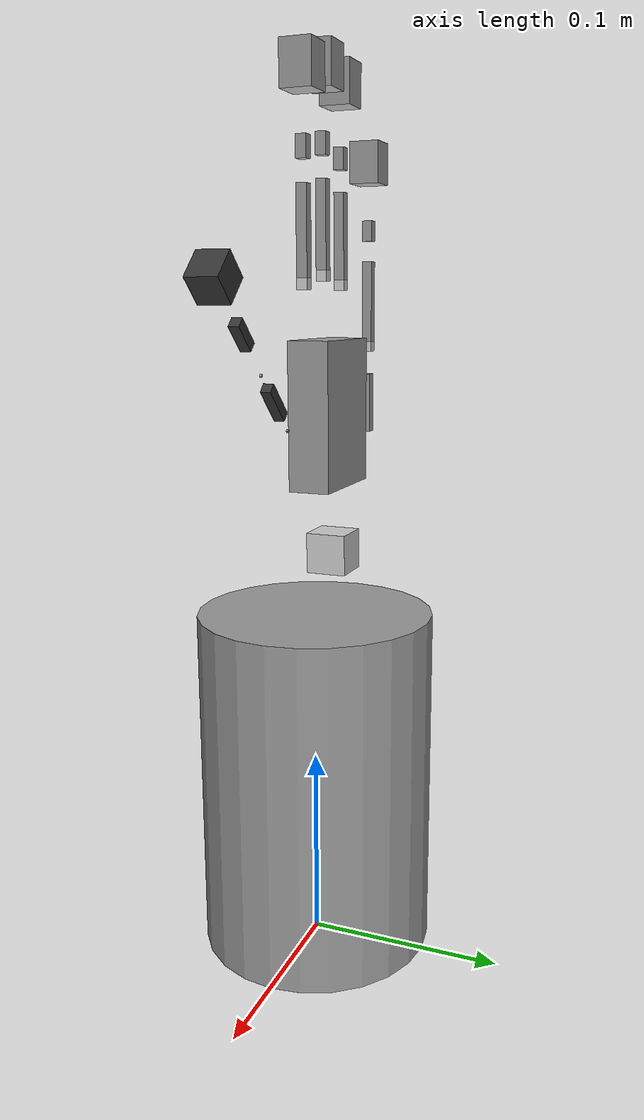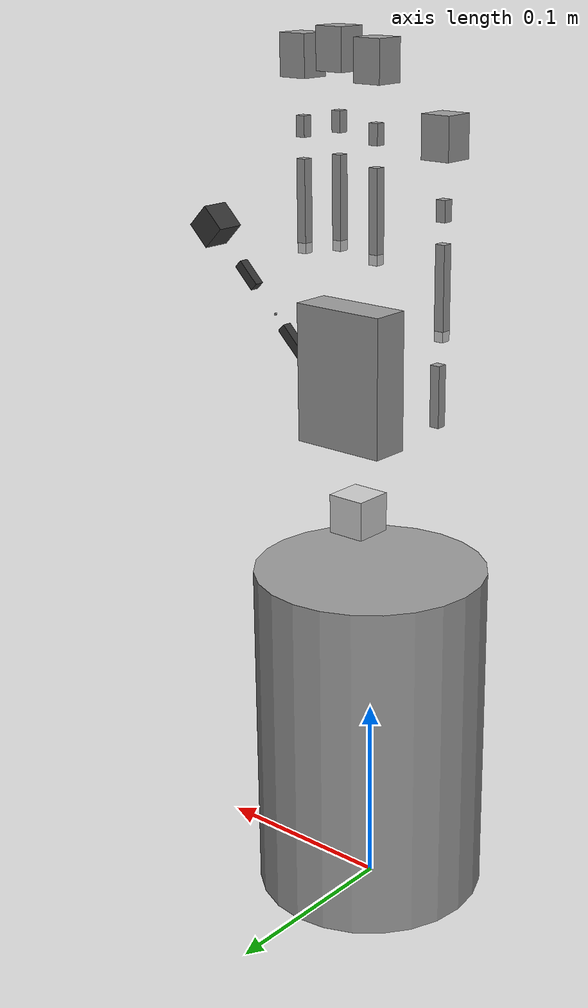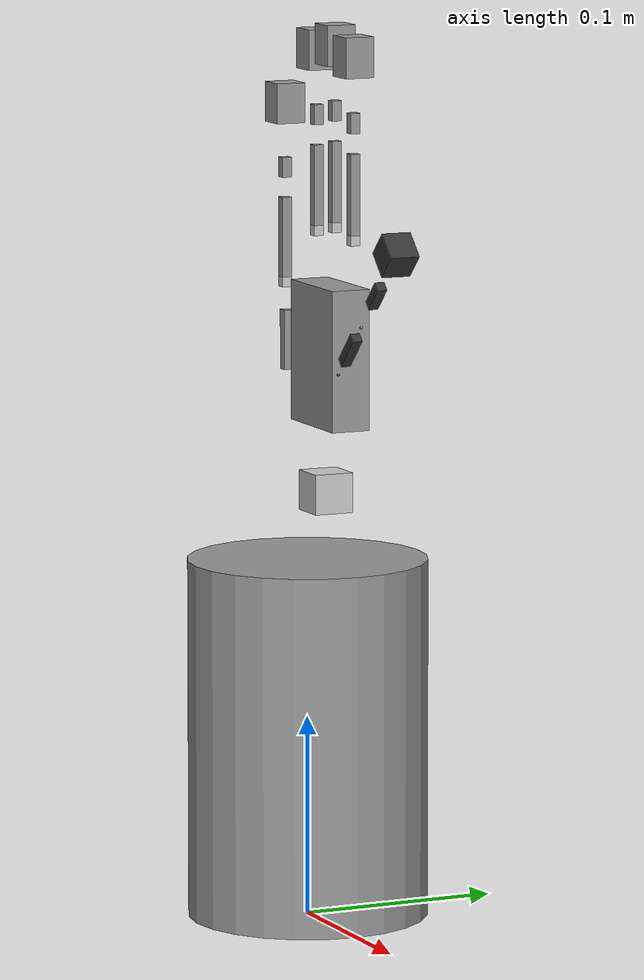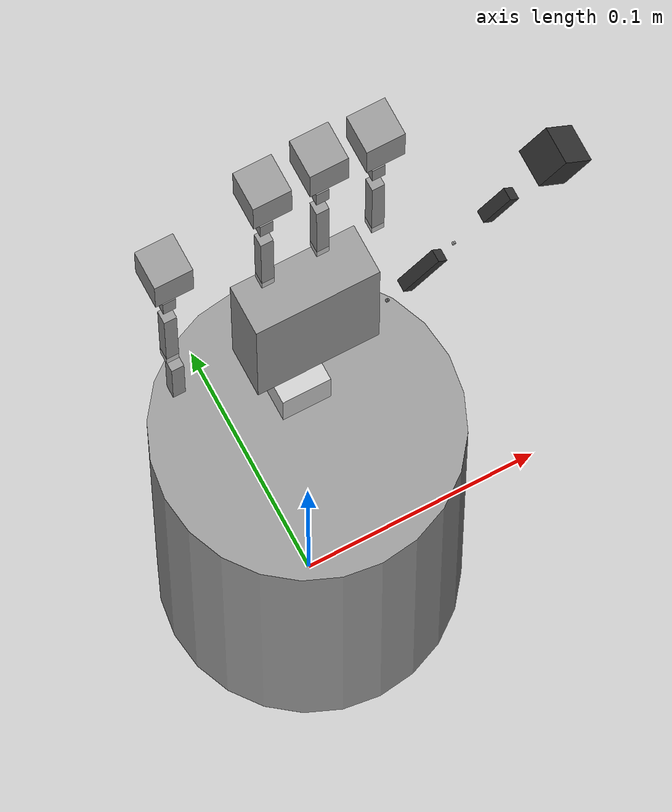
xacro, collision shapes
<robot xmlns:sensor="http://playerstage.sourceforge.net/gazebo/xmlschema/#sensor"
       xmlns:controller="http://playerstage.sourceforge.net/gazebo/xmlschema/#controller"
       xmlns:interface="http://playerstage.sourceforge.net/gazebo/xmlschema/#interface"
       xmlns:xacro="http://www.ros.org/wiki/xacro"
       name="shadowhand_motor">

  <include filename="$(find sr_hand)/model/materials.urdf.xacro" />
  <include filename="$(find sr_hand)/model/hand_urdf/full_hand_motor.urdf.xacro" />

  <xacro:shadowhand_motor>
  </xacro:shadowhand_motor>

</robot>

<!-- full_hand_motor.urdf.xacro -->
<robot xmlns:sensor="http://playerstage.sourceforge.net/gazebo/xmlschema/#sensor"
       xmlns:controller="http://playerstage.sourceforge.net/gazebo/xmlschema/#controller"
       xmlns:interface="http://playerstage.sourceforge.net/gazebo/xmlschema/#interface"
       xmlns:xacro="http://www.ros.org/wiki/xacro">

  <include filename="$(find sr_hand)/model/hand_urdf/forearm/forearm_motor.urdf.xacro" />
  <include filename="$(find sr_hand)/model/hand_urdf/wrist/wrist.urdf.xacro" />
  <include filename="$(find sr_hand)/model/hand_urdf/palm/palm.urdf.xacro" />
  <include filename="$(find sr_hand)/model/hand_urdf/finger/classic_finger.urdf.xacro" />
  <include filename="$(find sr_hand)/model/hand_urdf/finger/little_finger.urdf.xacro" />
  <include filename="$(find sr_hand)/model/hand_urdf/thumb/thumb.urdf.xacro" />

  <xacro:macro name="shadowhand_motor">

    <xacro:forearm_motor>
    </xacro:forearm_motor>

    <xacro:wrist parent="forearm_motor">
      <origin xyz="0 0.010 0.213" rpy="0 0 0" />
    </xacro:wrist>

    <xacro:palm parent="wrist">
    </xacro:palm>

    <xacro:finger link_prefix="ff" joint_prefix="FF" parent="palm">
      <origin xyz="0.033 0 0.095" rpy="0 0 0" />
      <axis xyz="0 -1 0" />
    </xacro:finger>

    <xacro:finger link_prefix="mf" joint_prefix="MF" parent="palm">
      <origin xyz="0.011 0 0.099" rpy="0 0 0" />
      <axis xyz="0 -1 0" />
    </xacro:finger>

    <xacro:finger link_prefix="rf" joint_prefix="RF" parent="palm">
      <origin xyz="-0.011 0 0.095" rpy="0 0 0" />
      <axis xyz="0 1 0" />
    </xacro:finger>

    <xacro:little_finger link_prefix="lf" joint_prefix="LF" parent="palm">
    </xacro:little_finger>

    <xacro:thumb parent="palm">
    </xacro:thumb>

  </xacro:macro>

</robot>

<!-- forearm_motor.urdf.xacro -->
<robot xmlns:xacro="http://ros.org/wiki/xacro">

  <property name="M_PI" value="3.1415926535897931" />

  <xacro:macro name="forearm_motor">

    <link name="forearm_motor">
      <inertial>
	<origin xyz="0 0 0" />
	<mass value="3.0" />
	<inertia  ixx="1.0" ixy="0.0"  ixz="0.0"  iyy="0.0"  iyz="0.0"  izz="0.0" />
      </inertial>
      <visual>
	<origin xyz="0 0 0" rpy="0 0 0" />
	<geometry name="shadow_forearm_geom">
	  <mesh filename="package://sr_hand/model/meshes/forearm.mesh" scale="0.001 0.001 0.001"/>
	</geometry>
	<material name="Grey" />
      </visual>
      <collision>
	<origin xyz="0 0 0.09" rpy="0 0 0" />
	<geometry name="shadow_forearm_collision">
	  <cylinder radius="0.06" length="0.180"/>
	</geometry>
      </collision>
    </link>
    <gazebo reference="forearm_motor">
      <material>Gazebo/Grey</material>
      <selfCollide>true</selfCollide>
    </gazebo>

  </xacro:macro>

</robot>

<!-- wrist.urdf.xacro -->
<robot xmlns:xacro="http://ros.org/wiki/xacro">

  <xacro:macro name="wrist" params="parent *origin">

    <link name="wrist" >
      <inertial>
	<insert_block name="origin" />
	<mass value="0.3" />
	<inertia  ixx="1.0" ixy="0.0"  ixz="0.0"  iyy="100.0"  iyz="0.0"
	izz="1.0" />
      </inertial>
      <visual>
	<origin xyz="0 0 0" rpy="${M_PI/2} 0 0" />
	<geometry name="wrist_visual">
	  <mesh filename="package://sr_hand/model/meshes/wrist.mesh" scale="0.001 0.001 0.001" />
	</geometry>
	<material name="LightGrey" />
      </visual>
      <collision>
	<origin xyz="0 0 0" rpy="0 0 0" />
	<geometry name="wrist_collision_geom">
	  <box size="0.02 0.02 0.02" />
	</geometry>
      </collision>
    </link>
    <gazebo reference="wrist">
      <material>PR2/Grey2</material>
      <selfCollide>true</selfCollide>
    </gazebo>

    <joint name="WRJ2" type="revolute">
      <parent link="${parent}"/>
      <child link="wrist"/>
      <insert_block name="origin" />
      <axis xyz="0 1 0" />
      <limit lower="-0.52359877559829882" upper="0.17453292519943295"
      effort="10" velocity="1.0"/>
    </joint>

  </xacro:macro>

</robot>

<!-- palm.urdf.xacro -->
<robot xmlns:xacro="http://ros.org/wiki/xacro"
        xmlns:sensor="http://playerstage.sourceforge.net/gazebo/xmlschema/#sensor"
       xmlns:controller="http://playerstage.sourceforge.net/gazebo/xmlschema/#controller"
       xmlns:joint="http://playerstage.sourceforge.net/gazebo/xmlschema/#slider"
       xmlns:interface="http://playerstage.sourceforge.net/gazebo/xmlschema/#interface"
       xmlns:body="http://playerstage.sourceforge.net/gazebo/xmlschema/#body"
       xmlns:geom="http://playerstage.sourceforge.net/gazebo/xmlschema/#geom">

  <include filename="$(find sr_hand)/model/hand_urdf/palm/palm.transmission.xacro" />

  <xacro:macro name="palm" params="parent">

    <link name="palm" >
      <inertial>
	<origin xyz="0 0.010 0.247" rpy="0 0 0" />
	<mass value="0.3" />
	<inertia  ixx="1.0" ixy="0.0"  ixz="0.0"  iyy="0.0"  iyz="0.0"
	izz="0.0" />
      </inertial>
      <visual>
	<origin xyz="0 0 0" rpy="0 -${M_PI/2} 0" />
	<geometry name="palm_visual">
	  <mesh filename="package://sr_hand/model/meshes/palm.mesh" scale="0.001 0.001 0.001" />
	</geometry>
	<material name="Grey"/>
      </visual>
      <collision>
	<origin xyz="0.005 0 0.035" rpy="0 0 0" />
	<geometry name="palm_collision_geom">
	  <box size="0.05 0.02 0.07" />
	</geometry>
      </collision>
    </link>
    <gazebo reference="palm">
      <sensor:contact name="palm_contact_sensor">
       <geom>palm_geom</geom>
       <updateRate>100.0</updateRate>
       <controller:gazebo_ros_bumper name="palm_gazebo_ros_bumper_controller" plugin="libgazebo_ros_bumper.so">
          <alwaysOn>true</alwaysOn>
          <updateRate>100.0</updateRate>
          <frameName>palm</frameName>
          <bumperTopicName>palm_bumper</bumperTopicName>
          <interface:bumper name="palm_gazebo_ros_bumper_iface" />
       </controller:gazebo_ros_bumper>
      </sensor:contact>
      <material>Gazebo/Grey</material>
    </gazebo>

    <joint name="WRJ1" type="revolute">
      <parent link="${parent}"/>
      <child link="palm"/>
      <origin xyz="0 0 0.034" rpy="0 0 0" />
      <axis xyz="1 0 0" />
      <limit lower="-0.78539816339744828" upper="0.6108652381980153"
      effort="10" velocity="1.0"/>
      <dynamics damping="50.5"/>
    </joint>

    <xacro:shadowhand_palm_transmission />

  </xacro:macro>

</robot>

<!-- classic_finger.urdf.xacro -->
<robot xmlns:xacro="http://www.ros.org/wiki/xacro">

  <include filename="$(find sr_hand)/model/hand_urdf/finger/knuckle/knuckle.urdf.xacro" />
  <include filename="$(find sr_hand)/model/hand_urdf/finger/proximal/proximal.urdf.xacro" />
  <include filename="$(find sr_hand)/model/hand_urdf/finger/middle/middle.urdf.xacro" />
  <include filename="$(find sr_hand)/model/hand_urdf/finger/distal/distal.urdf.xacro" />

  <xacro:macro name="finger" params="link_prefix joint_prefix parent *origin">

    <xacro:knuckle link_prefix="${link_prefix}" joint_prefix="${joint_prefix}" parent="${parent}" >
      <insert_block name="origin" />
    </xacro:knuckle>

    <xacro:proximal link_prefix="${link_prefix}" joint_prefix="${joint_prefix}" parent="${link_prefix}knuckle" >
    </xacro:proximal>

    <xacro:middle link_prefix="${link_prefix}" joint_prefix="${joint_prefix}" parent="${link_prefix}proximal" >
    </xacro:middle>

    <xacro:distal link_prefix="${link_prefix}" joint_prefix="${joint_prefix}" parent="${link_prefix}middle" >
    </xacro:distal>

  </xacro:macro>

</robot>

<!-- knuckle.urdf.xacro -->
<robot xmlns:xacro="http://ros.org/wiki/xacro">

  <xacro:macro name="knuckle" params="link_prefix joint_prefix parent *origin">

    <link name="${link_prefix}knuckle">
      <inertial>
	<insert_block name="origin" />
	<mass value="0.008" />
	<inertia  ixx="1.0" ixy="0.0"  ixz="0.0"  iyy="100.0"  iyz="0.0"
	izz="1.0" />
      </inertial>
      <visual>
	<origin xyz="0 0 0.0005" rpy="${M_PI} -${M_PI/2} -${M_PI/2}" />
	<geometry name="knuckle_visual">
      <mesh filename="package://sr_hand/model/meshes/knuckle.mesh" scale="0.001 0.001 0.001" />
      </geometry>
      <material name="LightGrey" />
      </visual>
      <collision>
	<origin xyz="0 0 0" rpy="0 0 0" />
	<geometry name="knuckle_collision_geom">
	  <box size="0.005 0.005 0.005" />
	</geometry>
      </collision>
    </link>
    <gazebo reference="${link_prefix}knuckle">
      <material>PR2/Grey2</material>
    </gazebo>

    <joint name="${joint_prefix}J4" type="revolute">
      <parent link="${parent}"/>
      <child link="${link_prefix}knuckle"/>
      <insert_block name="origin" />
      <axis xyz="0 -1 0" />
      <limit lower="-0.43633231299858238" upper="0.43633231299858238"
      effort="10" velocity="1.0"/>
    </joint>

  </xacro:macro>

</robot>

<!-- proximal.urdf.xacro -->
<robot xmlns:xacro="http://ros.org/wiki/xacro"
        xmlns:sensor="http://playerstage.sourceforge.net/gazebo/xmlschema/#sensor"
       xmlns:controller="http://playerstage.sourceforge.net/gazebo/xmlschema/#controller"
       xmlns:joint="http://playerstage.sourceforge.net/gazebo/xmlschema/#slider"
       xmlns:interface="http://playerstage.sourceforge.net/gazebo/xmlschema/#interface"
       xmlns:body="http://playerstage.sourceforge.net/gazebo/xmlschema/#body"
       xmlns:geom="http://playerstage.sourceforge.net/gazebo/xmlschema/#geom">

  <include filename="$(find sr_hand)/model/hand_urdf/finger/proximal/proximal.transmission.xacro" />

  <xacro:macro name="proximal" params="link_prefix joint_prefix parent">

    <link name="${link_prefix}proximal">
      <inertial>
	<mass value="0.014" />
	<origin xyz="0 0 0" />
	<inertia  ixx="0.1" ixy="0.0"  ixz="0.0"  iyy="0.1"  iyz="0.0"
	izz="0.0" />
      </inertial>
      <visual>
	<origin xyz="0 0 0" rpy="0 0 0" />
	<geometry name="proximal_visual">
      <mesh filename="package://sr_hand/model/meshes/F3.mesh" scale="0.001 0.001 0.001" />
      </geometry>
      <material name="Grey" />
      </visual>
      <collision>
	<origin xyz="0 0 0.0225" rpy="0 0 0 " />
	<geometry name="proximal_collision_geom">
	  <box size="0.005 0.005 0.04" />
	</geometry>
      </collision>
    </link>
    <gazebo reference="${link_prefix}proximal">
      <sensor:contact name="${link_prefix}proximal_contact_sensor">
        <geom>${link_prefix}proximal_geom</geom>
       <updateRate>100.0</updateRate>
        <controller:gazebo_ros_bumper name="${link_prefix}proximal_gazebo_ros_bumper_controller" plugin="libgazebo_ros_bumper.so">
          <alwaysOn>true</alwaysOn>
          <updateRate>100.0</updateRate>
          <frameName>${link_prefix}proximal</frameName>
          <bumperTopicName>${link_prefix}proximal_bumper</bumperTopicName>
          <interface:bumper name="${link_prefix}proximal_gazebo_ros_bumper_iface" />
        </controller:gazebo_ros_bumper>
      </sensor:contact>
      <material>Gazebo/Grey</material>
    </gazebo>

    <joint name="${joint_prefix}J3" type="revolute">
      <parent link="${parent}"/>
      <child link="${link_prefix}proximal"/>
      <origin xyz="0 0 0" rpy="0 0 0" />
      <axis xyz="1 0 0" />
      <limit lower="0" upper="${M_PI/2}" effort="10"
      velocity="1.0"/>
      <dynamics damping="50.5"/>
    </joint>

    <xacro:proximal_transmission />

  </xacro:macro>

</robot>

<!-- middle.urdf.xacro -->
<robot xmlns:xacro="http://ros.org/wiki/xacro"
        xmlns:sensor="http://playerstage.sourceforge.net/gazebo/xmlschema/#sensor"
       xmlns:controller="http://playerstage.sourceforge.net/gazebo/xmlschema/#controller"
       xmlns:joint="http://playerstage.sourceforge.net/gazebo/xmlschema/#slider"
       xmlns:interface="http://playerstage.sourceforge.net/gazebo/xmlschema/#interface"
       xmlns:body="http://playerstage.sourceforge.net/gazebo/xmlschema/#body"
       xmlns:geom="http://playerstage.sourceforge.net/gazebo/xmlschema/#geom">

  <include filename="$(find sr_hand)/model/hand_urdf/finger/middle/middle.transmission.xacro" />

  <xacro:macro name="middle" params="link_prefix joint_prefix parent">

    <link name="${link_prefix}middle">
      <inertial>
	<origin xyz="0 0 0.045" rpy="0 0 0" />
	<mass value="0.012" />
	<inertia  ixx="0.1" ixy="0.0"  ixz="0.0"  iyy="0.1"  iyz="0.0"
	izz="0.0" />
      </inertial>
      <visual>
	<origin xyz="0 0 0" rpy="0 0 0" />
	<geometry name="middle_visual">
      <mesh filename="package://sr_hand/model/meshes/F2.mesh" scale="0.001 0.001 0.001" />
      </geometry>
      <material name="Grey" />
      </visual>
      <collision>
	<origin xyz="0 0 0.0125" rpy="0 0 0" />
	<geometry name="middle_collision_geom">
	  <box size="0.005 0.005 0.010" />
	</geometry>
      </collision>
    </link>
    <gazebo reference="${link_prefix}middle">
      <sensor:contact name="${link_prefix}middle_contact_sensor">
        <geom>${link_prefix}middle_geom</geom>
       <updateRate>100.0</updateRate>
        <controller:gazebo_ros_bumper name="${link_prefix}middle_gazebo_ros_bumper_controller" plugin="libgazebo_ros_bumper.so">
          <alwaysOn>true</alwaysOn>
          <updateRate>100.0</updateRate>
          <frameName>${link_prefix}middle</frameName>
          <bumperTopicName>${link_prefix}middle_bumper</bumperTopicName>
          <interface:bumper name="${link_prefix}middle_gazebo_ros_bumper_iface" />
        </controller:gazebo_ros_bumper>
      </sensor:contact>
      <material>Gazebo/Grey</material>
    </gazebo>

    <joint name="${joint_prefix}J2" type="revolute">
      <parent link="${parent}"/>
      <child link="${link_prefix}middle"/>
      <origin xyz="0 0 0.045" rpy="0 0 0" />
      <axis xyz="1 0 0" />
      <limit lower="0" upper="${M_PI/2}" effort="10"
      velocity="1.0" />
      <dynamics damping="50.5"/>
    </joint>

    <xacro:middle_transmission />

  </xacro:macro>

</robot>

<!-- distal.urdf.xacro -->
<robot xmlns:xacro="http://ros.org/wiki/xacro">

  <xacro:macro name="distal" params="link_prefix joint_prefix parent">

    <link name="${link_prefix}distal">
      <inertial>
	<mass value="0.010" />
	<origin xyz="0 0 0.025" />
	<inertia  ixx="1.0" ixy="0.0"  ixz="0.0"  iyy="100.0"  iyz="0.0"
	izz="1.0" />
      </inertial>
      <visual>
	<origin xyz="0 0 0" rpy="0 -${M_PI/2} 0" />
	<geometry name="distal_visual">
      <mesh filename="package://sr_hand/model/meshes/F1.mesh" scale="0.001 0.001 0.001" />
      </geometry>
      <material name="Grey" />
      </visual>
      <collision>
	<origin xyz="0 0 0.02" rpy="0 0 0" />
	<geometry name="distal_collision_geom">
	  <box size="0.015 0.015 0.020" />
	</geometry>
      </collision>
    </link>
    <gazebo reference="${link_prefix}distal">
      <material>Gazebo/Grey</material>
    </gazebo>

    <joint name="${joint_prefix}J1" type="revolute">
      <parent link="${parent}"/>
      <child link="${link_prefix}distal"/>
      <origin xyz="0 0 0.025" rpy="0 0 0" />
      <axis xyz="1 0 0" />
      <limit lower="0" upper="${M_PI/2}" effort="10"
      velocity="1.0" />
    </joint>

  </xacro:macro>

</robot>

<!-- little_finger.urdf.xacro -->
<robot xmlns:xacro="http://www.ros.org/wiki/xacro">

  <include filename="$(find sr_hand)/model/hand_urdf/finger/knuckle/knuckle.urdf.xacro" />
  <include filename="$(find sr_hand)/model/hand_urdf/finger/proximal/proximal.urdf.xacro" />
  <include filename="$(find sr_hand)/model/hand_urdf/finger/middle/middle.urdf.xacro" />
  <include filename="$(find sr_hand)/model/hand_urdf/finger/distal/distal.urdf.xacro" />
  <include filename="$(find sr_hand)/model/hand_urdf/finger/lfmetacarpal/lfmetacarpal.urdf.xacro" />

  <xacro:macro name="little_finger" params="link_prefix joint_prefix parent">

    <xacro:lfmetacarpal parent="${parent}" >
    </xacro:lfmetacarpal>

    <link name="lfknuckle">
      <inertial>
	<origin xyz="0 0 0.0425" rpy="0 0 0" />
	<mass value="0.008" />
	<inertia  ixx="1.0" ixy="0.0"  ixz="0.0"  iyy="100.0"  iyz="0.0"
	izz="1.0" />
      </inertial>
      <visual>
	<origin xyz="0 0 0.0005" rpy="${M_PI} -${M_PI/2} -${M_PI/2}" />
	<geometry name="knuckle_visual">
      <mesh filename="package://sr_hand/model/meshes/knuckle.mesh" scale="0.001 0.001 0.001" />
      </geometry>
      <material name="LightGrey" />
      </visual>
      <collision>
	<origin xyz="0 0 0" rpy="0 0 0" />
	<geometry name="knuckle_collision_geom">
	  <box size="0.005 0.005 0.005" />
	</geometry>
      </collision>
    </link>
    <gazebo reference="lfknuckle">
      <material>PR2/Grey2</material>
    </gazebo>

    <joint name="LFJ4" type="revolute">
      <parent link="lfmetacarpal"/>
      <child link="lfknuckle"/>
      <origin xyz="-0.01671 0 0.044" rpy="0 0 0" />
      <axis xyz="0 -1 0" />
      <limit lower="-0.43633231299858238" upper="0.43633231299858238"
      effort="10" velocity="1.0"/>
    </joint>

    <xacro:proximal link_prefix="${link_prefix}" joint_prefix="${joint_prefix}" parent="${link_prefix}knuckle" >
    </xacro:proximal>

    <xacro:middle link_prefix="${link_prefix}" joint_prefix="${joint_prefix}" parent="${link_prefix}proximal" >
    </xacro:middle>

    <xacro:distal link_prefix="${link_prefix}" joint_prefix="${joint_prefix}" parent="${link_prefix}middle" >
    </xacro:distal>

  </xacro:macro>

</robot>

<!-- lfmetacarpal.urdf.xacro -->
<robot xmlns:xacro="http://ros.org/wiki/xacro"
        xmlns:sensor="http://playerstage.sourceforge.net/gazebo/xmlschema/#sensor"
       xmlns:controller="http://playerstage.sourceforge.net/gazebo/xmlschema/#controller"
       xmlns:joint="http://playerstage.sourceforge.net/gazebo/xmlschema/#slider"
       xmlns:interface="http://playerstage.sourceforge.net/gazebo/xmlschema/#interface"
       xmlns:body="http://playerstage.sourceforge.net/gazebo/xmlschema/#body"
       xmlns:geom="http://playerstage.sourceforge.net/gazebo/xmlschema/#geom">

  <include filename="$(find sr_hand)/model/hand_urdf/finger/lfmetacarpal/lfmetacarpal.transmission.xacro" />

  <!-- Right Handed -->
  <xacro:macro name="lfmetacarpal" params="parent">
      <xacro:lfmetacarpal_base parent="${parent}" reflect="1" mesh="lfmetacarpal.mesh" />
  </xacro:macro>

  <!-- Left Handed -->
  <xacro:macro name="lfmetacarpal_left" params="parent">
      <xacro:lfmetacarpal_base parent="${parent}" reflect="-1" mesh="lfmetacarpal_left.mesh" />
  </xacro:macro>

  <!-- Macro to used to generate left and right handed versions.
  DO NOT use out side of here ie treat as a private macro -->
  <xacro:macro name="lfmetacarpal_base" params="parent reflect mesh">

    <link name="lfmetacarpal">
      <inertial>
        <origin xyz="${reflect*-0.033} 0 0.02071" rpy="0 0 0" />
	    <mass value="0.075" />
	    <inertia  ixx="0.1" ixy="0.0"  ixz="0.0"  iyy="0.1"  iyz="0.0" izz="0.1" />
      </inertial>
      <visual>
        <origin xyz="0 0 0" rpy="0 0 0" />
        <geometry name="lfmetacarpal_visual">
          <mesh filename="package://sr_hand/model/meshes/${mesh}" scale="0.001 0.001 0.001" />
        </geometry>
        <material name="Grey" />
      </visual>
      <collision>
          <origin xyz="${reflect*-0.015} 0 0.015" rpy="0 0 0" />
        <geometry name="lfmetacarpal_collision_geom">
          <box size="0.005 0.005 0.03" />
        </geometry>
      </collision>
    </link>
    <gazebo reference="lfmetacarpal">
      <sensor:contact name="lfmetacarpal_contact_sensor">
        <geom>lfmetacarpal_geom</geom>
       <updateRate>100.0</updateRate>
        <controller:gazebo_ros_bumper name="lfmetacarpal_gazebo_ros_bumper_controller" plugin="libgazebo_ros_bumper.so">
          <alwaysOn>true</alwaysOn>
          <updateRate>100.0</updateRate>
          <frameName>lfmetacarpal</frameName>
          <bumperTopicName>lfmetacarpal_bumper</bumperTopicName>
          <interface:bumper name="lfmetacarpal_gazebo_ros_bumper_iface" />
        </controller:gazebo_ros_bumper>
      </sensor:contact>
      <material>Gazebo/Grey</material>
    </gazebo>

    <joint name="LFJ5" type="revolute">
      <parent link="${parent}"/>
      <child link="lfmetacarpal"/>
      <origin xyz="${reflect*-0.033} 0 0.02071" rpy="0 0 0" />
      <axis xyz="0.573576436 0 ${reflect*0.819152044}" />
      <limit lower="0" upper="0.69813170079773179" effort="10"
      velocity="1.0" />
      <dynamics damping="50.5"/>
    </joint>

    <xacro:lfmetacarpal_transmission />

  </xacro:macro>

</robot>

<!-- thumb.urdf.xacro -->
<robot xmlns:xacro="http://ros.org/wiki/xacro">

  <include filename="$(find sr_hand)/model/hand_urdf/thumb/thbase.urdf.xacro" />
  <include filename="$(find sr_hand)/model/hand_urdf/thumb/thproximal.urdf.xacro" />
  <include filename="$(find sr_hand)/model/hand_urdf/thumb/thhub.urdf.xacro" />
  <include filename="$(find sr_hand)/model/hand_urdf/thumb/thmiddle.urdf.xacro" />
  <include filename="$(find sr_hand)/model/hand_urdf/thumb/thdistal.urdf.xacro" />

  <xacro:macro name="thumb" params="parent">

    <xacro:thbase parent="${parent}">
    </xacro:thbase>

    <xacro:thproximal parent="thbase">
    </xacro:thproximal>

    <xacro:thhub parent="thproximal">
    </xacro:thhub>

    <xacro:thmiddle parent="thhub">
    </xacro:thmiddle>

    <xacro:thdistal parent="thmiddle">
    </xacro:thdistal>

  </xacro:macro>

</robot>

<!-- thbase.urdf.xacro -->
<robot xmlns:xacro="http://ros.org/wiki/xacro">

  <xacro:macro name="thbase" params="parent">

    <link name="thbase">
      <inertial>
	<mass value="0.010" />
	<origin xyz="0.034 0.0085 0.02924" rpy="0 0 0"/>
	<inertia  ixx="1.0" ixy="0.0"  ixz="0.0"  iyy="100.0"  iyz="0.0"
	izz="1.0" />
      </inertial>
      <visual>
	<origin xyz="0 0 0" rpy="0 0 0" />
	<geometry name="thbase_visual">
	  <box size="0.001 0.001 0.001" />
	</geometry>
      <material name="shadow_thbase_material">
	  <color rgba="0.5 0.5 0.5 1.0"/>
	</material>
      </visual>
      <collision>
	<origin xyz="0 0 0" rpy="0 0 0 " />
	<geometry name="thbase_collision_geom">
	  <box size="0.001 0.001 0.001" />
	</geometry>
      </collision>
    </link>
    <gazebo reference="thbase">
      <material>Gazebo/Grey</material>
    </gazebo>

    <joint name="THJ5" type="revolute">
      <parent link="${parent}"/>
      <child link="thbase"/>
      <origin xyz="0.034 -0.0085 0.02924" rpy="0 ${M_PI/4} 0" />
      <axis xyz="0 0 -1" />
      <limit lower="-1.047" upper="1.047" effort="10"
      velocity="1.0" />
    </joint>

  </xacro:macro>

</robot>

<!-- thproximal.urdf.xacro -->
<robot xmlns:xacro="http://ros.org/wiki/xacro">

  <xacro:macro name="thproximal" params="parent">

    <link name="thproximal">
      <inertial>
	<mass value="0.016" />
	<origin xyz="0 0 0" rpy="0 0 0"/>
	<inertia  ixx="1.0" ixy="0.0"  ixz="0.0"  iyy="100.0"  iyz="0.0"
	izz="1.0" />
      </inertial>
      <visual>
	<origin xyz="0 0 0" rpy="0 0 0" />
	<geometry name="thproximal_visual">
      <mesh filename="package://sr_hand/model/meshes/TH3_z.mesh" scale="0.01 0.01 0.01" />
      </geometry>
      <material name="shadow_thproximal_material">
	  <color rgba="0.2 0.2 0.2 1.0"/>
	</material>
      </visual>
      <collision>
	<origin xyz="0 0 0.02" rpy="0 0 0" />
	<geometry name="thproximal_collision_geom">
	  <box size="0.005 0.005 0.02" />
	</geometry>
      </collision>
    </link>
    <gazebo reference="thproximal">
      <material>Gazebo/Grey</material>
    </gazebo>

    <joint name="THJ4" type="revolute">
      <parent link="${parent}"/>
      <child link="thproximal"/>
      <origin xyz="0 0 0" rpy="0 0 0" />
      <axis xyz="1 0 0" />
      <limit lower="0" upper="1.309" effort="10"
      velocity="1.0" />
    </joint>

  </xacro:macro>

</robot>

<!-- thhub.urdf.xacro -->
<robot xmlns:xacro="http://ros.org/wiki/xacro"
       xmlns:sensor="http://playerstage.sourceforge.net/gazebo/xmlschema/#sensor"
       xmlns:controller="http://playerstage.sourceforge.net/gazebo/xmlschema/#controller"
       xmlns:joint="http://playerstage.sourceforge.net/gazebo/xmlschema/#slider"
       xmlns:interface="http://playerstage.sourceforge.net/gazebo/xmlschema/#interface"
       xmlns:body="http://playerstage.sourceforge.net/gazebo/xmlschema/#body"
       xmlns:geom="http://playerstage.sourceforge.net/gazebo/xmlschema/#geom">

  <include filename="$(find sr_hand)/model/hand_urdf/thumb/thhub.transmission.xacro" />

  <xacro:macro name="thhub" params="parent">

    <link name="thhub">
      <inertial>
	<mass value="0.002" />
	<origin xyz="0.02687 0 0.02687" rpy="0 0 0"/>
	<inertia  ixx="1.0" ixy="0.0"  ixz="0.0"  iyy="0.0"  iyz="0.0"
	izz="0.0" />
      </inertial>
      <visual>
	<origin xyz="0 0 0" rpy="0 0 0" />
	<geometry name="thhub_visual">
	<box size="0.001 0.001 0.001" />
      </geometry>
      <material name="shadow_thhub_material">
	  <color rgba="0.7 0.7 0.7 1.0"/>
	</material>
      </visual>
      <collision>
	<origin xyz="0 0 0" rpy="0 0 0 " />
	<geometry name="thhub_collision_geom">
	  <box size="0.001 0.001 0.001" />
	</geometry>
      </collision>
    </link>
    <gazebo reference="thhub">
      <sensor:contact name="thhub_contact_sensor">
        <geom>thhub_geom</geom>
       <updateRate>100.0</updateRate>
        <controller:gazebo_ros_bumper name="thhub_gazebo_ros_bumper_controller" plugin="libgazebo_ros_bumper.so">
          <alwaysOn>true</alwaysOn>
          <updateRate>100.0</updateRate>
          <frameName>thhub</frameName>
          <bumperTopicName>thhub_bumper</bumperTopicName>
          <interface:bumper name="thhub_gazebo_ros_bumper_iface" />
        </controller:gazebo_ros_bumper>
      </sensor:contact>
      <material>Gazebo/Grey</material>
    </gazebo>

    <joint name="THJ3" type="revolute">
      <parent link="${parent}"/>
      <child link="thhub"/>
      <origin xyz="0 0 0.038" rpy="0 0 0" />
      <axis xyz="1 0 0" />
      <limit lower="-0.2618" upper="0.2618" effort="10"
      velocity="1.0" />
      <dynamics damping="50.5"/>
    </joint>

    <xacro:thhub_transmission />

  </xacro:macro>

</robot>

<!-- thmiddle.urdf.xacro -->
<robot xmlns:xacro="http://ros.org/wiki/xacro">

  <xacro:macro name="thmiddle" params="parent">

    <link name="thmiddle">
      <inertial>
	<mass value="0.016" />
	<origin xyz="0 0 0" rpy="0 0 0"/>
	<inertia  ixx="1.0" ixy="0.0"  ixz="0.0"  iyy="100.0"  iyz="0.0"
	izz="1.0" />
      </inertial>
      <visual>
	<origin xyz="0 0 0" rpy="0 -${M_PI/2} 0" />
	<geometry name="thmiddle_visual">
	<mesh filename="package://sr_hand/model/meshes/TH2_z.mesh" scale="0.001 0.001 0.001" />
      </geometry>
      <material name="shadow_thmiddle_material">
	  <color rgba="0.2 0.2 0.2 1.0"/>
	</material>
      </visual>
      <collision>
	<origin xyz="0 0 0.025" rpy="0 0 0 " />
	<geometry name="thmiddle_collision_geom">
	  <box size="0.005 0.005 0.015" />
	</geometry>
      </collision>
    </link>
    <gazebo reference="thmiddle">
      <material>Gazebo/Grey</material>
    </gazebo>

    <joint name="THJ2" type="revolute">
      <parent link="${parent}"/>
      <child link="thmiddle"/>
      <origin xyz="0 0 0" rpy="0 0 0" />
      <axis xyz="0 -1 0" />
      <limit lower="-0.5237" upper="0.5237" effort="10"
      velocity="1.0" />
    </joint>

  </xacro:macro>

</robot>

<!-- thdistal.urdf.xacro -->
<robot xmlns:xacro="http://ros.org/wiki/xacro">

  <xacro:macro name="thdistal" params="parent">

    <link name="thdistal">
      <inertial>
	<mass value="0.016" />
	<origin xyz="-0.02263 0 0.02263" rpy="0 0 0"/>
	<inertia  ixx="1.0" ixy="0.0"  ixz="0.0"  iyy="100.0"  iyz="0.0"
	izz="1.0" />
      </inertial>
      <visual>
	<origin xyz="0 0 0" rpy="${M_PI} -${M_PI/2} ${M_PI}" />
	<geometry name="thdistal_visual">
	<mesh filename="package://sr_hand/model/meshes/TH1_z.mesh" scale="0.001 0.001 0.001" />
      </geometry>
      <material name="shadow_thmiddle_material">
	  <color rgba="0.2 0.2 0.2 1.0"/>
	</material>
      </visual>
      <collision>
	<origin xyz="0 0 0.025" rpy="0 0 0 " />
	<geometry name="thmiddle_collision_geom">
	  <box size="0.015 0.015 0.015" />
	</geometry>
      </collision>
    </link>
    <gazebo reference="thdistal">
      <material>Gazebo/Grey</material>
    </gazebo>

    <joint name="THJ1" type="revolute">
      <parent link="${parent}"/>
      <child link="thdistal"/>
      <origin xyz="0 0 0.032" rpy="0 0 0" />
      <axis xyz="0 -1 0" />
      <limit lower="0" upper="1.571" effort="10"
      velocity="1.0" />
    </joint>

  </xacro:macro>

</robot>
